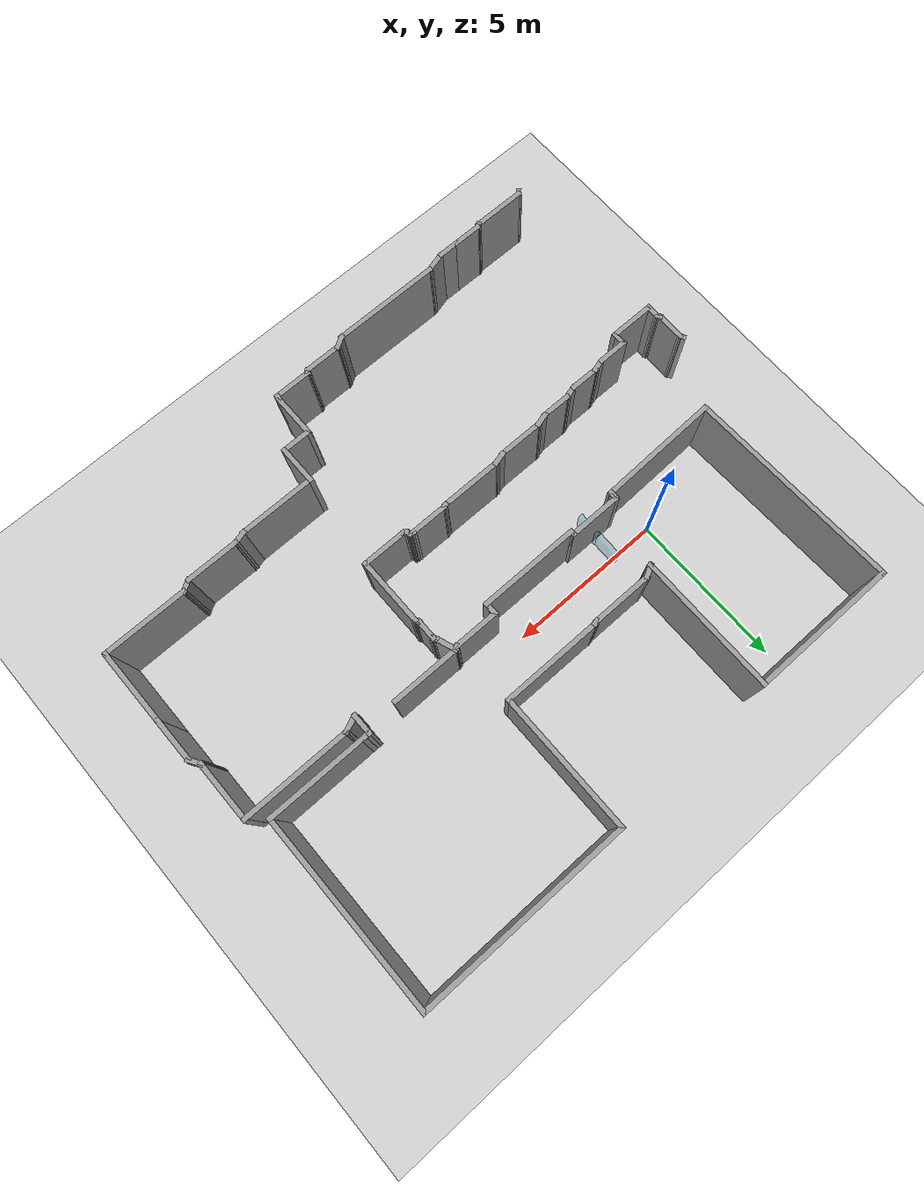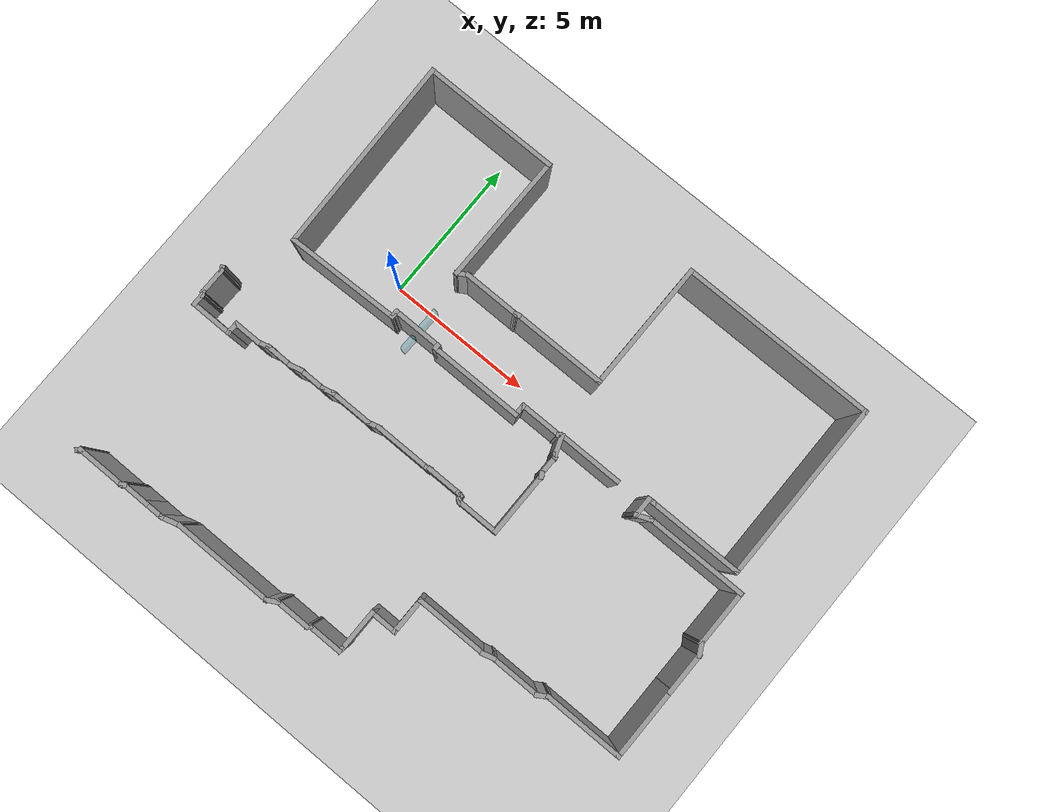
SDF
<sdf version="1.7">
 <world name="default">
  <model name="ground_plane">
   <static>1</static>
   <link name="link">
    <collision name="collision">
     <geometry><plane><normal>0 0 1</normal><size>100 100</size></plane></geometry>
     <surface><friction><ode><mu>100</mu><mu2>50</mu2></ode></friction></surface>
    </collision>
    <visual name="visual">
     <cast_shadows>0</cast_shadows>
     <geometry><plane><normal>0 0 1</normal><size>100 100</size></plane></geometry>
     <material>
      <script><uri>file://media/materials/scripts/gazebo.material</uri><name>Gazebo/Grey</name></script>
     </material>
    </visual>
   </link>
  </model>
  <model name="robovisor_env2">
   <pose>-12.9435 -0.483334 0 0 -0 3.14</pose>
   <link name="Wall_0">
    <collision name="Wall_0_Collision">
     <geometry><box><size>0.5 0.15 2.5</size></box></geometry>
     <pose>0 0 1.25 0 -0 0</pose>
    </collision>
    <visual name="Wall_0_Visual">
     <pose>0 0 1.25 0 -0 0</pose>
     <geometry><box><size>0.5 0.15 2.5</size></box></geometry>
     <material>
      <script><uri>file://media/materials/scripts/gazebo.material</uri><name>Gazebo/Grey</name></script>
      <ambient>1 1 1 1</ambient>
     </material>
     <meta><layer>0</layer></meta>
    </visual>
    <pose>-18.4525 0.304932 0 0 -0 1.5708</pose>
   </link>
   <link name="Wall_1">
    <collision name="Wall_1_Collision">
     <geometry><box><size>3.25 0.15 2.5</size></box></geometry>
     <pose>0 0 1.25 0 -0 0</pose>
    </collision>
    <visual name="Wall_1_Visual">
     <pose>0 0 1.25 0 -0 0</pose>
     <geometry><box><size>3.25 0.15 2.5</size></box></geometry>
     <material>
      <script><uri>file://media/materials/scripts/gazebo.material</uri><name>Gazebo/Grey</name></script>
      <ambient>1 1 1 1</ambient>
     </material>
     <meta><layer>0</layer></meta>
    </visual>
    <pose>-16.9025 0.479932 0 0 -0 0</pose>
   </link>
   <link name="Wall_119">
    <collision name="Wall_119_Collision">
     <geometry><box><size>0.25 0.15 2.5</size></box></geometry>
     <pose>0 0 1.25 0 -0 0</pose>
    </collision>
    <visual name="Wall_119_Visual">
     <pose>0 0 1.25 0 -0 0</pose>
     <geometry><box><size>0.25 0.15 2.5</size></box></geometry>
     <material>
      <script><uri>file://media/materials/scripts/gazebo.material</uri><name>Gazebo/Grey</name></script>
      <ambient>1 1 1 1</ambient>
     </material>
     <meta><layer>0</layer></meta>
    </visual>
    <pose>-8.90704 2.74506 0 0 -0 2.0944</pose>
   </link>
   <link name="Wall_120">
    <collision name="Wall_120_Collision">
     <geometry><box><size>1 0.15 2.5</size></box></geometry>
     <pose>0 0 1.25 0 -0 0</pose>
    </collision>
    <visual name="Wall_120_Visual">
     <pose>0 0 1.25 0 -0 0</pose>
     <geometry><box><size>1 0.15 2.5</size></box></geometry>
     <material>
      <script><uri>file://media/materials/scripts/gazebo.material</uri><name>Gazebo/Grey</name></script>
      <ambient>1 1 1 1</ambient>
     </material>
     <meta><layer>0</layer></meta>
    </visual>
    <pose>-8.93204 3.21337 0 0 -0 1.5708</pose>
   </link>
   <link name="Wall_121">
    <collision name="Wall_121_Collision">
     <geometry><box><size>0.25 0.15 2.5</size></box></geometry>
     <pose>0 0 1.25 0 -0 0</pose>
    </collision>
    <visual name="Wall_121_Visual">
     <pose>0 0 1.25 0 -0 0</pose>
     <geometry><box><size>0.25 0.15 2.5</size></box></geometry>
     <material>
      <script><uri>file://media/materials/scripts/gazebo.material</uri><name>Gazebo/Grey</name></script>
      <ambient>1 1 1 1</ambient>
     </material>
     <meta><layer>0</layer></meta>
    </visual>
    <pose>-8.95704 3.68167 0 0 -0 2.0944</pose>
   </link>
   <link name="Wall_122">
    <collision name="Wall_122_Collision">
     <geometry><box><size>0.5 0.15 2.5</size></box></geometry>
     <pose>0 0 1.25 0 -0 0</pose>
    </collision>
    <visual name="Wall_122_Visual">
     <pose>0 0 1.25 0 -0 0</pose>
     <geometry><box><size>0.5 0.15 2.5</size></box></geometry>
     <material>
      <script><uri>file://media/materials/scripts/gazebo.material</uri><name>Gazebo/Grey</name></script>
      <ambient>1 1 1 1</ambient>
     </material>
     <meta><layer>0</layer></meta>
    </visual>
    <pose>-8.98204 3.89997 0 0 -0 1.5708</pose>
   </link>
   <link name="Wall_123">
    <collision name="Wall_123_Collision">
     <geometry><box><size>1.5 0.15 2.5</size></box></geometry>
     <pose>0 0 1.25 0 -0 0</pose>
    </collision>
    <visual name="Wall_123_Visual">
     <pose>0 0 1.25 0 -0 0</pose>
     <geometry><box><size>1.5 0.15 2.5</size></box></geometry>
     <material>
      <script><uri>file://media/materials/scripts/gazebo.material</uri><name>Gazebo/Grey</name></script>
      <ambient>1 1 1 1</ambient>
     </material>
     <meta><layer>0</layer></meta>
    </visual>
    <pose>-9.65704 4.07497 0 0 -0 3.14159</pose>
   </link>
   <link name="Wall_124">
    <collision name="Wall_124_Collision">
     <geometry><box><size>0.5 0.15 2.5</size></box></geometry>
     <pose>0 0 1.25 0 -0 0</pose>
    </collision>
    <visual name="Wall_124_Visual">
     <pose>0 0 1.25 0 -0 0</pose>
     <geometry><box><size>0.5 0.15 2.5</size></box></geometry>
     <material>
      <script><uri>file://media/materials/scripts/gazebo.material</uri><name>Gazebo/Grey</name></script>
      <ambient>1 1 1 1</ambient>
     </material>
     <meta><layer>0</layer></meta>
    </visual>
    <pose>-10.332 3.89997 0 0 -0 -1.5708</pose>
   </link>
   <link name="Wall_126">
    <collision name="Wall_126_Collision">
     <geometry><box><size>1 0.15 2.5</size></box></geometry>
     <pose>0 0 1.25 0 -0 0</pose>
    </collision>
    <visual name="Wall_126_Visual">
     <pose>0 0 1.25 0 -0 0</pose>
     <geometry><box><size>1 0.15 2.5</size></box></geometry>
     <material>
      <script><uri>file://media/materials/scripts/gazebo.material</uri><name>Gazebo/Grey</name></script>
      <ambient>1 1 1 1</ambient>
     </material>
     <meta><layer>0</layer></meta>
    </visual>
    <pose>-10.757 3.72497 0 0 -0 3.14159</pose>
   </link>
   <link name="Wall_127">
    <collision name="Wall_127_Collision">
     <geometry><box><size>0.5 0.15 2.5</size></box></geometry>
     <pose>0 0 1.25 0 -0 0</pose>
    </collision>
    <visual name="Wall_127_Visual">
     <pose>0 0 1.25 0 -0 0</pose>
     <geometry><box><size>0.5 0.15 2.5</size></box></geometry>
     <material>
      <script><uri>file://media/materials/scripts/gazebo.material</uri><name>Gazebo/Grey</name></script>
      <ambient>1 1 1 1</ambient>
     </material>
     <meta><layer>0</layer></meta>
    </visual>
    <pose>-11.3511 3.67968 0 0 -0 -2.87979</pose>
   </link>
   <link name="Wall_128">
    <collision name="Wall_128_Collision">
     <geometry><box><size>1 0.15 2.5</size></box></geometry>
     <pose>0 0 1.25 0 -0 0</pose>
    </collision>
    <visual name="Wall_128_Visual">
     <pose>0 0 1.25 0 -0 0</pose>
     <geometry><box><size>1 0.15 2.5</size></box></geometry>
     <material>
      <script><uri>file://media/materials/scripts/gazebo.material</uri><name>Gazebo/Grey</name></script>
      <ambient>1 1 1 1</ambient>
     </material>
     <meta><layer>0</layer></meta>
    </visual>
    <pose>-11.9451 3.63438 0 0 -0 3.14159</pose>
   </link>
   <link name="Wall_129">
    <collision name="Wall_129_Collision">
     <geometry><box><size>0.5 0.15 2.5</size></box></geometry>
     <pose>0 0 1.25 0 -0 0</pose>
    </collision>
    <visual name="Wall_129_Visual">
     <pose>0 0 1.25 0 -0 0</pose>
     <geometry><box><size>0.5 0.15 2.5</size></box></geometry>
     <material>
      <script><uri>file://media/materials/scripts/gazebo.material</uri><name>Gazebo/Grey</name></script>
      <ambient>1 1 1 1</ambient>
     </material>
     <meta><layer>0</layer></meta>
    </visual>
    <pose>-12.5392 3.58909 0 0 -0 -2.87979</pose>
   </link>
   <link name="Wall_13">
    <collision name="Wall_13_Collision">
     <geometry><box><size>3.92846 0.15 2.5</size></box></geometry>
     <pose>0 0 1.25 0 -0 0</pose>
    </collision>
    <visual name="Wall_13_Visual">
     <pose>0 0 1.25 0 -0 0</pose>
     <geometry><box><size>3.92846 0.15 2.5</size></box></geometry>
     <material>
      <script><uri>file://media/materials/scripts/gazebo.material</uri><name>Gazebo/Grey</name></script>
      <ambient>1 1 1 1</ambient>
     </material>
     <meta><layer>0</layer></meta>
    </visual>
    <pose>-11.8641 0.634129 0 0 -0 -3.1129</pose>
   </link>
   <link name="Wall_130">
    <collision name="Wall_130_Collision">
     <geometry><box><size>1 0.15 2.5</size></box></geometry>
     <pose>0 0 1.25 0 -0 0</pose>
    </collision>
    <visual name="Wall_130_Visual">
     <pose>0 0 1.25 0 -0 0</pose>
     <geometry><box><size>1 0.15 2.5</size></box></geometry>
     <material>
      <script><uri>file://media/materials/scripts/gazebo.material</uri><name>Gazebo/Grey</name></script>
      <ambient>1 1 1 1</ambient>
     </material>
     <meta><layer>0</layer></meta>
    </visual>
    <pose>-13.1332 3.5438 0 0 -0 3.14159</pose>
   </link>
   <link name="Wall_131">
    <collision name="Wall_131_Collision">
     <geometry><box><size>0.5 0.15 2.5</size></box></geometry>
     <pose>0 0 1.25 0 -0 0</pose>
    </collision>
    <visual name="Wall_131_Visual">
     <pose>0 0 1.25 0 -0 0</pose>
     <geometry><box><size>0.5 0.15 2.5</size></box></geometry>
     <material>
      <script><uri>file://media/materials/scripts/gazebo.material</uri><name>Gazebo/Grey</name></script>
      <ambient>1 1 1 1</ambient>
     </material>
     <meta><layer>0</layer></meta>
    </visual>
    <pose>-13.7272 3.4985 0 0 -0 -2.87979</pose>
   </link>
   <link name="Wall_132">
    <collision name="Wall_132_Collision">
     <geometry><box><size>1.5 0.15 2.5</size></box></geometry>
     <pose>0 0 1.25 0 -0 0</pose>
    </collision>
    <visual name="Wall_132_Visual">
     <pose>0 0 1.25 0 -0 0</pose>
     <geometry><box><size>1.5 0.15 2.5</size></box></geometry>
     <material>
      <script><uri>file://media/materials/scripts/gazebo.material</uri><name>Gazebo/Grey</name></script>
      <ambient>1 1 1 1</ambient>
     </material>
     <meta><layer>0</layer></meta>
    </visual>
    <pose>-14.5713 3.45321 0 0 -0 3.14159</pose>
   </link>
   <link name="Wall_133">
    <collision name="Wall_133_Collision">
     <geometry><box><size>0.5 0.15 2.5</size></box></geometry>
     <pose>0 0 1.25 0 -0 0</pose>
    </collision>
    <visual name="Wall_133_Visual">
     <pose>0 0 1.25 0 -0 0</pose>
     <geometry><box><size>0.5 0.15 2.5</size></box></geometry>
     <material>
      <script><uri>file://media/materials/scripts/gazebo.material</uri><name>Gazebo/Grey</name></script>
      <ambient>1 1 1 1</ambient>
     </material>
     <meta><layer>0</layer></meta>
    </visual>
    <pose>-15.4153 3.40792 0 0 -0 -2.87979</pose>
   </link>
   <link name="Wall_134">
    <collision name="Wall_134_Collision">
     <geometry><box><size>2 0.15 2.5</size></box></geometry>
     <pose>0 0 1.25 0 -0 0</pose>
    </collision>
    <visual name="Wall_134_Visual">
     <pose>0 0 1.25 0 -0 0</pose>
     <geometry><box><size>2 0.15 2.5</size></box></geometry>
     <material>
      <script><uri>file://media/materials/scripts/gazebo.material</uri><name>Gazebo/Grey</name></script>
      <ambient>1 1 1 1</ambient>
     </material>
     <meta><layer>0</layer></meta>
    </visual>
    <pose>-16.5093 3.36262 0 0 -0 3.14159</pose>
   </link>
   <link name="Wall_135">
    <collision name="Wall_135_Collision">
     <geometry><box><size>0.25 0.15 2.5</size></box></geometry>
     <pose>0 0 1.25 0 -0 0</pose>
    </collision>
    <visual name="Wall_135_Visual">
     <pose>0 0 1.25 0 -0 0</pose>
     <geometry><box><size>0.25 0.15 2.5</size></box></geometry>
     <material>
      <script><uri>file://media/materials/scripts/gazebo.material</uri><name>Gazebo/Grey</name></script>
      <ambient>1 1 1 1</ambient>
     </material>
     <meta><layer>0</layer></meta>
    </visual>
    <pose>-17.4826 3.34968 0 0 -0 -2.87979</pose>
   </link>
   <link name="Wall_136">
    <collision name="Wall_136_Collision">
     <geometry><box><size>1.25 0.15 2.5</size></box></geometry>
     <pose>0 0 1.25 0 -0 0</pose>
    </collision>
    <visual name="Wall_136_Visual">
     <pose>0 0 1.25 0 -0 0</pose>
     <geometry><box><size>1.25 0.15 2.5</size></box></geometry>
     <material>
      <script><uri>file://media/materials/scripts/gazebo.material</uri><name>Gazebo/Grey</name></script>
      <ambient>1 1 1 1</ambient>
     </material>
     <meta><layer>0</layer></meta>
    </visual>
    <pose>-18.0809 3.33674 0 0 -0 3.14159</pose>
   </link>
   <link name="Wall_137">
    <collision name="Wall_137_Collision">
     <geometry><box><size>0.25 0.15 2.5</size></box></geometry>
     <pose>0 0 1.25 0 -0 0</pose>
    </collision>
    <visual name="Wall_137_Visual">
     <pose>0 0 1.25 0 -0 0</pose>
     <geometry><box><size>0.25 0.15 2.5</size></box></geometry>
     <material>
      <script><uri>file://media/materials/scripts/gazebo.material</uri><name>Gazebo/Grey</name></script>
      <ambient>1 1 1 1</ambient>
     </material>
     <meta><layer>0</layer></meta>
    </visual>
    <pose>-18.6792 3.34968 0 0 -0 2.87979</pose>
   </link>
   <link name="Wall_138">
    <collision name="Wall_138_Collision">
     <geometry><box><size>0.25 0.15 2.5</size></box></geometry>
     <pose>0 0 1.25 0 -0 0</pose>
    </collision>
    <visual name="Wall_138_Visual">
     <pose>0 0 1.25 0 -0 0</pose>
     <geometry><box><size>0.25 0.15 2.5</size></box></geometry>
     <material>
      <script><uri>file://media/materials/scripts/gazebo.material</uri><name>Gazebo/Grey</name></script>
      <ambient>1 1 1 1</ambient>
     </material>
     <meta><layer>0</layer></meta>
    </visual>
    <pose>-18.7405 3.41092 0 0 -0 1.8326</pose>
   </link>
   <link name="Wall_139">
    <collision name="Wall_139_Collision">
     <geometry><box><size>0.25 0.15 2.5</size></box></geometry>
     <pose>0 0 1.25 0 -0 0</pose>
    </collision>
    <visual name="Wall_139_Visual">
     <pose>0 0 1.25 0 -0 0</pose>
     <geometry><box><size>0.25 0.15 2.5</size></box></geometry>
     <material>
      <script><uri>file://media/materials/scripts/gazebo.material</uri><name>Gazebo/Grey</name></script>
      <ambient>1 1 1 1</ambient>
     </material>
     <meta><layer>0</layer></meta>
    </visual>
    <pose>-18.7967 3.48421 0 0 -0 2.61799</pose>
   </link>
   <link name="Wall_140">
    <collision name="Wall_140_Collision">
     <geometry><box><size>1.5 0.15 2.5</size></box></geometry>
     <pose>0 0 1.25 0 -0 0</pose>
    </collision>
    <visual name="Wall_140_Visual">
     <pose>0 0 1.25 0 -0 0</pose>
     <geometry><box><size>1.5 0.15 2.5</size></box></geometry>
     <material>
      <script><uri>file://media/materials/scripts/gazebo.material</uri><name>Gazebo/Grey</name></script>
      <ambient>1 1 1 1</ambient>
     </material>
     <meta><layer>0</layer></meta>
    </visual>
    <pose>-19.515 3.50922 0 0 -0 3.14159</pose>
   </link>
   <link name="Wall_141">
    <collision name="Wall_141_Collision">
     <geometry><box><size>2.25 0.15 2.5</size></box></geometry>
     <pose>0 0 1.25 0 -0 0</pose>
    </collision>
    <visual name="Wall_141_Visual">
     <pose>0 0 1.25 0 -0 0</pose>
     <geometry><box><size>2.25 0.15 2.5</size></box></geometry>
     <material>
      <script><uri>file://media/materials/scripts/gazebo.material</uri><name>Gazebo/Grey</name></script>
      <ambient>1 1 1 1</ambient>
     </material>
     <meta><layer>0</layer></meta>
    </visual>
    <pose>-20.19 2.45921 0 0 -0 -1.5708</pose>
   </link>
   <link name="Wall_144">
    <collision name="Wall_144_Collision">
     <geometry><box><size>0.25 0.15 2.5</size></box></geometry>
     <pose>0 0 1.25 0 -0 0</pose>
    </collision>
    <visual name="Wall_144_Visual">
     <pose>0 0 1.25 0 -0 0</pose>
     <geometry><box><size>0.25 0.15 2.5</size></box></geometry>
     <material>
      <script><uri>file://media/materials/scripts/gazebo.material</uri><name>Gazebo/Grey</name></script>
      <ambient>1 1 1 1</ambient>
     </material>
     <meta><layer>0</layer></meta>
    </visual>
    <pose>-20.165 1.36591 0 0 -0 -1.0472</pose>
   </link>
   <link name="Wall_145">
    <collision name="Wall_145_Collision">
     <geometry><box><size>0.75 0.15 2.5</size></box></geometry>
     <pose>0 0 1.25 0 -0 0</pose>
    </collision>
    <visual name="Wall_145_Visual">
     <pose>0 0 1.25 0 -0 0</pose>
     <geometry><box><size>0.75 0.15 2.5</size></box></geometry>
     <material>
      <script><uri>file://media/materials/scripts/gazebo.material</uri><name>Gazebo/Grey</name></script>
      <ambient>1 1 1 1</ambient>
     </material>
     <meta><layer>0</layer></meta>
    </visual>
    <pose>-20.14 1.02261 0 0 -0 -1.5708</pose>
   </link>
   <link name="Wall_146">
    <collision name="Wall_146_Collision">
     <geometry><box><size>0.25 0.15 2.5</size></box></geometry>
     <pose>0 0 1.25 0 -0 0</pose>
    </collision>
    <visual name="Wall_146_Visual">
     <pose>0 0 1.25 0 -0 0</pose>
     <geometry><box><size>0.25 0.15 2.5</size></box></geometry>
     <material>
      <script><uri>file://media/materials/scripts/gazebo.material</uri><name>Gazebo/Grey</name></script>
      <ambient>1 1 1 1</ambient>
     </material>
     <meta><layer>0</layer></meta>
    </visual>
    <pose>-20.115 0.679311 0 0 -0 -1.0472</pose>
   </link>
   <link name="Wall_147">
    <collision name="Wall_147_Collision">
     <geometry><box><size>0.741245 0.15 2.5</size></box></geometry>
     <pose>0 0 1.25 0 -0 0</pose>
    </collision>
    <visual name="Wall_147_Visual">
     <pose>0 0 1.25 0 -0 0</pose>
     <geometry><box><size>0.741245 0.15 2.5</size></box></geometry>
     <material>
      <script><uri>file://media/materials/scripts/gazebo.material</uri><name>Gazebo/Grey</name></script>
      <ambient>1 1 1 1</ambient>
     </material>
     <meta><layer>0</layer></meta>
    </visual>
    <pose>-19.9896 0.357971 0 0 -0 -1.22416</pose>
   </link>
   <link name="Wall_16">
    <collision name="Wall_16_Collision">
     <geometry><box><size>4.5 0.15 2.5</size></box></geometry>
     <pose>0 0 1.25 0 -0 0</pose>
    </collision>
    <visual name="Wall_16_Visual">
     <pose>0 0 1.25 0 -0 0</pose>
     <geometry><box><size>4.5 0.15 2.5</size></box></geometry>
     <material>
      <script><uri>file://media/materials/scripts/gazebo.material</uri><name>Gazebo/Grey</name></script>
      <ambient>1 1 1 1</ambient>
     </material>
     <meta><layer>0</layer></meta>
    </visual>
    <pose>-14.3741 -3.83787 0 0 -0 -1.5708</pose>
   </link>
   <link name="Wall_17">
    <collision name="Wall_17_Collision">
     <geometry><box><size>4.75 0.15 2.5</size></box></geometry>
     <pose>0 0 1.25 0 -0 0</pose>
    </collision>
    <visual name="Wall_17_Visual">
     <pose>0 0 1.25 0 -0 0</pose>
     <geometry><box><size>4.75 0.15 2.5</size></box></geometry>
     <material>
      <script><uri>file://media/materials/scripts/gazebo.material</uri><name>Gazebo/Grey</name></script>
      <ambient>1 1 1 1</ambient>
     </material>
     <meta><layer>0</layer></meta>
    </visual>
    <pose>-12.0741 -6.01287 0 0 -0 0</pose>
   </link>
   <link name="Wall_18">
    <collision name="Wall_18_Collision">
     <geometry><box><size>6.85422 0.15 2.5</size></box></geometry>
     <pose>0 0 1.25 0 -0 0</pose>
    </collision>
    <visual name="Wall_18_Visual">
     <pose>0 0 1.25 0 -0 0</pose>
     <geometry><box><size>6.85422 0.15 2.5</size></box></geometry>
     <material>
      <script><uri>file://media/materials/scripts/gazebo.material</uri><name>Gazebo/Grey</name></script>
      <ambient>1 1 1 1</ambient>
     </material>
     <meta><layer>0</layer></meta>
    </visual>
    <pose>-9.87486 -2.66227 0 0 -0 1.60086</pose>
   </link>
   <link name="Wall_2">
    <collision name="Wall_2_Collision">
     <geometry><box><size>0.25 0.15 2.5</size></box></geometry>
     <pose>0 0 1.25 0 -0 0</pose>
    </collision>
    <visual name="Wall_2_Visual">
     <pose>0 0 1.25 0 -0 0</pose>
     <geometry><box><size>0.25 0.15 2.5</size></box></geometry>
     <material>
      <script><uri>file://media/materials/scripts/gazebo.material</uri><name>Gazebo/Grey</name></script>
      <ambient>1 1 1 1</ambient>
     </material>
     <meta><layer>0</layer></meta>
    </visual>
    <pose>-15.3525 0.429932 0 0 -0 -1.5708</pose>
   </link>
   <link name="Wall_20">
    <collision name="Wall_20_Collision">
     <geometry><box><size>0.5 0.15 2.5</size></box></geometry>
     <pose>0 0 1.25 0 -0 0</pose>
    </collision>
    <visual name="Wall_20_Visual">
     <pose>0 0 1.25 0 -0 0</pose>
     <geometry><box><size>0.5 0.15 2.5</size></box></geometry>
     <material>
      <script><uri>file://media/materials/scripts/gazebo.material</uri><name>Gazebo/Grey</name></script>
      <ambient>1 1 1 1</ambient>
     </material>
     <meta><layer>0</layer></meta>
    </visual>
    <pose>-14.5256 -1.75037 0 0 -0 -2.61799</pose>
   </link>
   <link name="Wall_21">
    <collision name="Wall_21_Collision">
     <geometry><box><size>2 0.15 2.5</size></box></geometry>
     <pose>0 0 1.25 0 -0 0</pose>
    </collision>
    <visual name="Wall_21_Visual">
     <pose>0 0 1.25 0 -0 0</pose>
     <geometry><box><size>2 0.15 2.5</size></box></geometry>
     <material>
      <script><uri>file://media/materials/scripts/gazebo.material</uri><name>Gazebo/Grey</name></script>
      <ambient>1 1 1 1</ambient>
     </material>
     <meta><layer>0</layer></meta>
    </visual>
    <pose>-15.6022 -1.83787 0 0 -0 3.14159</pose>
   </link>
   <link name="Wall_22">
    <collision name="Wall_22_Collision">
     <geometry><box><size>0.25 0.15 2.5</size></box></geometry>
     <pose>0 0 1.25 0 -0 0</pose>
    </collision>
    <visual name="Wall_22_Visual">
     <pose>0 0 1.25 0 -0 0</pose>
     <geometry><box><size>0.25 0.15 2.5</size></box></geometry>
     <material>
      <script><uri>file://media/materials/scripts/gazebo.material</uri><name>Gazebo/Grey</name></script>
      <ambient>1 1 1 1</ambient>
     </material>
     <meta><layer>0</layer></meta>
    </visual>
    <pose>-16.5755 -1.85081 0 0 -0 -2.87979</pose>
   </link>
   <link name="Wall_23">
    <collision name="Wall_23_Collision">
     <geometry><box><size>3.25 0.15 2.5</size></box></geometry>
     <pose>0 0 1.25 0 -0 0</pose>
    </collision>
    <visual name="Wall_23_Visual">
     <pose>0 0 1.25 0 -0 0</pose>
     <geometry><box><size>3.25 0.15 2.5</size></box></geometry>
     <material>
      <script><uri>file://media/materials/scripts/gazebo.material</uri><name>Gazebo/Grey</name></script>
      <ambient>1 1 1 1</ambient>
     </material>
     <meta><layer>0</layer></meta>
    </visual>
    <pose>-18.1738 -1.86375 0 0 -0 3.14159</pose>
   </link>
   <link name="Wall_24">
    <collision name="Wall_24_Collision">
     <geometry><box><size>4.5 0.15 2.5</size></box></geometry>
     <pose>0 0 1.25 0 -0 0</pose>
    </collision>
    <visual name="Wall_24_Visual">
     <pose>0 0 1.25 0 -0 0</pose>
     <geometry><box><size>4.5 0.15 2.5</size></box></geometry>
     <material>
      <script><uri>file://media/materials/scripts/gazebo.material</uri><name>Gazebo/Grey</name></script>
      <ambient>1 1 1 1</ambient>
     </material>
     <meta><layer>0</layer></meta>
    </visual>
    <pose>-19.7238 -4.03875 0 0 -0 -1.5708</pose>
   </link>
   <link name="Wall_25">
    <collision name="Wall_25_Collision">
     <geometry><box><size>6.75 0.15 2.5</size></box></geometry>
     <pose>0 0 1.25 0 -0 0</pose>
    </collision>
    <visual name="Wall_25_Visual">
     <pose>0 0 1.25 0 -0 0</pose>
     <geometry><box><size>6.75 0.15 2.5</size></box></geometry>
     <material>
      <script><uri>file://media/materials/scripts/gazebo.material</uri><name>Gazebo/Grey</name></script>
      <ambient>1 1 1 1</ambient>
     </material>
     <meta><layer>0</layer></meta>
    </visual>
    <pose>-23.0238 -6.21375 0 0 -0 3.14159</pose>
   </link>
   <link name="Wall_26">
    <collision name="Wall_26_Collision">
     <geometry><box><size>6.25 0.15 2.5</size></box></geometry>
     <pose>0 0 1.25 0 -0 0</pose>
    </collision>
    <visual name="Wall_26_Visual">
     <pose>0 0 1.25 0 -0 0</pose>
     <geometry><box><size>6.25 0.15 2.5</size></box></geometry>
     <material>
      <script><uri>file://media/materials/scripts/gazebo.material</uri><name>Gazebo/Grey</name></script>
      <ambient>1 1 1 1</ambient>
     </material>
     <meta><layer>0</layer></meta>
    </visual>
    <pose>-26.3238 -3.16375 0 0 -0 1.5708</pose>
   </link>
   <link name="Wall_3">
    <collision name="Wall_3_Collision">
     <geometry><box><size>1.75 0.15 2.5</size></box></geometry>
     <pose>0 0 1.25 0 -0 0</pose>
    </collision>
    <visual name="Wall_3_Visual">
     <pose>0 0 1.25 0 -0 0</pose>
     <geometry><box><size>1.75 0.15 2.5</size></box></geometry>
     <material>
      <script><uri>file://media/materials/scripts/gazebo.material</uri><name>Gazebo/Grey</name></script>
      <ambient>1 1 1 1</ambient>
     </material>
     <meta><layer>0</layer></meta>
    </visual>
    <pose>-14.5525 0.379932 0 0 -0 0</pose>
   </link>
   <link name="Wall_34">
    <collision name="Wall_34_Collision">
     <geometry><box><size>0.15 0.15 2.5</size></box></geometry>
     <pose>0 0 1.25 0 -0 0</pose>
    </collision>
    <visual name="Wall_34_Visual">
     <pose>0 0 1.25 0 -0 0</pose>
     <geometry><box><size>0.15 0.15 2.5</size></box></geometry>
     <material>
      <script><uri>file://media/materials/scripts/gazebo.material</uri><name>Gazebo/Grey</name></script>
      <ambient>1 1 1 1</ambient>
     </material>
     <meta><layer>0</layer></meta>
    </visual>
    <pose>-23.2238 -0.113748 0 0 -0 0</pose>
   </link>
   <link name="Wall_38">
    <collision name="Wall_38_Collision">
     <geometry><box><size>0.5 0.15 2.5</size></box></geometry>
     <pose>0 0 1.25 0 -0 0</pose>
    </collision>
    <visual name="Wall_38_Visual">
     <pose>0 0 1.25 0 -0 0</pose>
     <geometry><box><size>0.5 0.15 2.5</size></box></geometry>
     <material>
      <script><uri>file://media/materials/scripts/gazebo.material</uri><name>Gazebo/Grey</name></script>
      <ambient>1 1 1 1</ambient>
     </material>
     <meta><layer>0</layer></meta>
    </visual>
    <pose>-18.4525 0.304932 0 0 -0 -1.5708</pose>
   </link>
   <link name="Wall_39">
    <collision name="Wall_39_Collision">
     <geometry><box><size>1.5 0.15 2.5</size></box></geometry>
     <pose>0 0 1.25 0 -0 0</pose>
    </collision>
    <visual name="Wall_39_Visual">
     <pose>0 0 1.25 0 -0 0</pose>
     <geometry><box><size>1.5 0.15 2.5</size></box></geometry>
     <material>
      <script><uri>file://media/materials/scripts/gazebo.material</uri><name>Gazebo/Grey</name></script>
      <ambient>1 1 1 1</ambient>
     </material>
     <meta><layer>0</layer></meta>
    </visual>
    <pose>-19.1275 0.129932 0 0 -0 3.14159</pose>
   </link>
   <link name="Wall_4">
    <collision name="Wall_4_Collision">
     <geometry><box><size>0.25 0.15 2.5</size></box></geometry>
     <pose>0 0 1.25 0 -0 0</pose>
    </collision>
    <visual name="Wall_4_Visual">
     <pose>0 0 1.25 0 -0 0</pose>
     <geometry><box><size>0.25 0.15 2.5</size></box></geometry>
     <material>
      <script><uri>file://media/materials/scripts/gazebo.material</uri><name>Gazebo/Grey</name></script>
      <ambient>1 1 1 1</ambient>
     </material>
     <meta><layer>0</layer></meta>
    </visual>
    <pose>-13.7525 0.429932 0 0 -0 1.5708</pose>
   </link>
   <link name="Wall_40">
    <collision name="Wall_40_Collision">
     <geometry><box><size>0.25 0.15 2.5</size></box></geometry>
     <pose>0 0 1.25 0 -0 0</pose>
    </collision>
    <visual name="Wall_40_Visual">
     <pose>0 0 1.25 0 -0 0</pose>
     <geometry><box><size>0.25 0.15 2.5</size></box></geometry>
     <material>
      <script><uri>file://media/materials/scripts/gazebo.material</uri><name>Gazebo/Grey</name></script>
      <ambient>1 1 1 1</ambient>
     </material>
     <meta><layer>0</layer></meta>
    </visual>
    <pose>-19.8458 0.104932 0 0 -0 -2.61799</pose>
   </link>
   <link name="Wall_41">
    <collision name="Wall_41_Collision">
     <geometry><box><size>2.25 0.15 2.5</size></box></geometry>
     <pose>0 0 1.25 0 -0 0</pose>
    </collision>
    <visual name="Wall_41_Visual">
     <pose>0 0 1.25 0 -0 0</pose>
     <geometry><box><size>2.25 0.15 2.5</size></box></geometry>
     <material>
      <script><uri>file://media/materials/scripts/gazebo.material</uri><name>Gazebo/Grey</name></script>
      <ambient>1 1 1 1</ambient>
     </material>
     <meta><layer>0</layer></meta>
    </visual>
    <pose>-20.9391 0.079932 0 0 -0 3.14159</pose>
   </link>
   <link name="Wall_43">
    <collision name="Wall_43_Collision">
     <geometry><box><size>0.75 0.15 2.5</size></box></geometry>
     <pose>0 0 1.25 0 -0 0</pose>
    </collision>
    <visual name="Wall_43_Visual">
     <pose>0 0 1.25 0 -0 0</pose>
     <geometry><box><size>0.75 0.15 2.5</size></box></geometry>
     <material>
      <script><uri>file://media/materials/scripts/gazebo.material</uri><name>Gazebo/Grey</name></script>
      <ambient>1 1 1 1</ambient>
     </material>
     <meta><layer>0</layer></meta>
    </visual>
    <pose>-23.0334 0.189807 0 0 -0 -1.5708</pose>
   </link>
   <link name="Wall_44">
    <collision name="Wall_44_Collision">
     <geometry><box><size>3.44044 0.15 2.5</size></box></geometry>
     <pose>0 0 1.25 0 -0 0</pose>
    </collision>
    <visual name="Wall_44_Visual">
     <pose>0 0 1.25 0 -0 0</pose>
     <geometry><box><size>3.44044 0.15 2.5</size></box></geometry>
     <material>
      <script><uri>file://media/materials/scripts/gazebo.material</uri><name>Gazebo/Grey</name></script>
      <ambient>1 1 1 1</ambient>
     </material>
     <meta><layer>0</layer></meta>
    </visual>
    <pose>-24.6786 -0.11197 0 0 -0 -3.14051</pose>
   </link>
   <link name="Wall_46">
    <collision name="Wall_46_Collision">
     <geometry><box><size>0.619361 0.15 2.5</size></box></geometry>
     <pose>0 0 1.25 0 -0 0</pose>
    </collision>
    <visual name="Wall_46_Visual">
     <pose>0 0 1.25 0 -0 0</pose>
     <geometry><box><size>0.619361 0.15 2.5</size></box></geometry>
     <material>
      <script><uri>file://media/materials/scripts/gazebo.material</uri><name>Gazebo/Grey</name></script>
      <ambient>1 1 1 1</ambient>
     </material>
     <meta><layer>0</layer></meta>
    </visual>
    <pose>-23.2495 0.398505 0 0 -0 -2.74199</pose>
   </link>
   <link name="Wall_47">
    <collision name="Wall_47_Collision">
     <geometry><box><size>3.5 0.15 2.5</size></box></geometry>
     <pose>0 0 1.25 0 -0 0</pose>
    </collision>
    <visual name="Wall_47_Visual">
     <pose>0 0 1.25 0 -0 0</pose>
     <geometry><box><size>3.5 0.15 2.5</size></box></geometry>
     <material>
      <script><uri>file://media/materials/scripts/gazebo.material</uri><name>Gazebo/Grey</name></script>
      <ambient>1 1 1 1</ambient>
     </material>
     <meta><layer>0</layer></meta>
    </visual>
    <pose>-25.1331 0.307203 0 0 -0 3.14159</pose>
   </link>
   <link name="Wall_5">
    <collision name="Wall_5_Collision">
     <geometry><box><size>0.25 0.15 2.5</size></box></geometry>
     <pose>0 0 1.25 0 -0 0</pose>
    </collision>
    <visual name="Wall_5_Visual">
     <pose>0 0 1.25 0 -0 0</pose>
     <geometry><box><size>0.25 0.15 2.5</size></box></geometry>
     <material>
      <script><uri>file://media/materials/scripts/gazebo.material</uri><name>Gazebo/Grey</name></script>
      <ambient>1 1 1 1</ambient>
     </material>
     <meta><layer>0</layer></meta>
    </visual>
    <pose>-13.7525 0.529932 0 0 -0 1.5708</pose>
   </link>
   <link name="Wall_51">
    <collision name="Wall_51_Collision">
     <geometry><box><size>2 0.15 2.5</size></box></geometry>
     <pose>0 0 1.25 0 -0 0</pose>
    </collision>
    <visual name="Wall_51_Visual">
     <pose>0 0 1.25 0 -0 0</pose>
     <geometry><box><size>2 0.15 2.5</size></box></geometry>
     <material>
      <script><uri>file://media/materials/scripts/gazebo.material</uri><name>Gazebo/Grey</name></script>
      <ambient>1 1 1 1</ambient>
     </material>
     <meta><layer>0</layer></meta>
    </visual>
    <pose>-26.8081 1.2322 0 0 -0 1.5708</pose>
   </link>
   <link name="Wall_52">
    <collision name="Wall_52_Collision">
     <geometry><box><size>0.5 0.15 2.5</size></box></geometry>
     <pose>0 0 1.25 0 -0 0</pose>
    </collision>
    <visual name="Wall_52_Visual">
     <pose>0 0 1.25 0 -0 0</pose>
     <geometry><box><size>0.5 0.15 2.5</size></box></geometry>
     <material>
      <script><uri>file://media/materials/scripts/gazebo.material</uri><name>Gazebo/Grey</name></script>
      <ambient>1 1 1 1</ambient>
     </material>
     <meta><layer>0</layer></meta>
    </visual>
    <pose>-26.8956 2.30876 0 0 -0 2.0944</pose>
   </link>
   <link name="Wall_53">
    <collision name="Wall_53_Collision">
     <geometry><box><size>1.5 0.15 2.5</size></box></geometry>
     <pose>0 0 1.25 0 -0 0</pose>
    </collision>
    <visual name="Wall_53_Visual">
     <pose>0 0 1.25 0 -0 0</pose>
     <geometry><box><size>1.5 0.15 2.5</size></box></geometry>
     <material>
      <script><uri>file://media/materials/scripts/gazebo.material</uri><name>Gazebo/Grey</name></script>
      <ambient>1 1 1 1</ambient>
     </material>
     <meta><layer>0</layer></meta>
    </visual>
    <pose>-26.9831 3.13531 0 0 -0 1.5708</pose>
   </link>
   <link name="Wall_54">
    <collision name="Wall_54_Collision">
     <geometry><box><size>2.5 0.15 2.5</size></box></geometry>
     <pose>0 0 1.25 0 -0 0</pose>
    </collision>
    <visual name="Wall_54_Visual">
     <pose>0 0 1.25 0 -0 0</pose>
     <geometry><box><size>2.5 0.15 2.5</size></box></geometry>
     <material>
      <script><uri>file://media/materials/scripts/gazebo.material</uri><name>Gazebo/Grey</name></script>
      <ambient>1 1 1 1</ambient>
     </material>
     <meta><layer>0</layer></meta>
    </visual>
    <pose>-26.9831 4.98531 0 0 -0 1.5708</pose>
   </link>
   <link name="Wall_55">
    <collision name="Wall_55_Collision">
     <geometry><box><size>2.75 0.15 2.5</size></box></geometry>
     <pose>0 0 1.25 0 -0 0</pose>
    </collision>
    <visual name="Wall_55_Visual">
     <pose>0 0 1.25 0 -0 0</pose>
     <geometry><box><size>2.75 0.15 2.5</size></box></geometry>
     <material>
      <script><uri>file://media/materials/scripts/gazebo.material</uri><name>Gazebo/Grey</name></script>
      <ambient>1 1 1 1</ambient>
     </material>
     <meta><layer>0</layer></meta>
    </visual>
    <pose>-25.6831 6.16031 0 0 -0 0</pose>
   </link>
   <link name="Wall_56">
    <collision name="Wall_56_Collision">
     <geometry><box><size>0.5 0.15 2.5</size></box></geometry>
     <pose>0 0 1.25 0 -0 0</pose>
    </collision>
    <visual name="Wall_56_Visual">
     <pose>0 0 1.25 0 -0 0</pose>
     <geometry><box><size>0.5 0.15 2.5</size></box></geometry>
     <material>
      <script><uri>file://media/materials/scripts/gazebo.material</uri><name>Gazebo/Grey</name></script>
      <ambient>1 1 1 1</ambient>
     </material>
     <meta><layer>0</layer></meta>
    </visual>
    <pose>-24.2316 6.24781 0 0 -0 0.523599</pose>
   </link>
   <link name="Wall_57">
    <collision name="Wall_57_Collision">
     <geometry><box><size>1.75 0.15 2.5</size></box></geometry>
     <pose>0 0 1.25 0 -0 0</pose>
    </collision>
    <visual name="Wall_57_Visual">
     <pose>0 0 1.25 0 -0 0</pose>
     <geometry><box><size>1.75 0.15 2.5</size></box></geometry>
     <material>
      <script><uri>file://media/materials/scripts/gazebo.material</uri><name>Gazebo/Grey</name></script>
      <ambient>1 1 1 1</ambient>
     </material>
     <meta><layer>0</layer></meta>
    </visual>
    <pose>-23.28 6.33531 0 0 -0 0</pose>
   </link>
   <link name="Wall_58">
    <collision name="Wall_58_Collision">
     <geometry><box><size>0.5 0.15 2.5</size></box></geometry>
     <pose>0 0 1.25 0 -0 0</pose>
    </collision>
    <visual name="Wall_58_Visual">
     <pose>0 0 1.25 0 -0 0</pose>
     <geometry><box><size>0.5 0.15 2.5</size></box></geometry>
     <material>
      <script><uri>file://media/materials/scripts/gazebo.material</uri><name>Gazebo/Grey</name></script>
      <ambient>1 1 1 1</ambient>
     </material>
     <meta><layer>0</layer></meta>
    </visual>
    <pose>-22.311 6.38061 0 0 -0 0.261799</pose>
   </link>
   <link name="Wall_59">
    <collision name="Wall_59_Collision">
     <geometry><box><size>2.5 0.15 2.5</size></box></geometry>
     <pose>0 0 1.25 0 -0 0</pose>
    </collision>
    <visual name="Wall_59_Visual">
     <pose>0 0 1.25 0 -0 0</pose>
     <geometry><box><size>2.5 0.15 2.5</size></box></geometry>
     <material>
      <script><uri>file://media/materials/scripts/gazebo.material</uri><name>Gazebo/Grey</name></script>
      <ambient>1 1 1 1</ambient>
     </material>
     <meta><layer>0</layer></meta>
    </visual>
    <pose>-20.967 6.4259 0 0 -0 0</pose>
   </link>
   <link name="Wall_61">
    <collision name="Wall_61_Collision">
     <geometry><box><size>1.31718 0.15 2.5</size></box></geometry>
     <pose>0 0 1.25 0 -0 0</pose>
    </collision>
    <visual name="Wall_61_Visual">
     <pose>0 0 1.25 0 -0 0</pose>
     <geometry><box><size>1.31718 0.15 2.5</size></box></geometry>
     <material>
      <script><uri>file://media/materials/scripts/gazebo.material</uri><name>Gazebo/Grey</name></script>
      <ambient>1 1 1 1</ambient>
     </material>
     <meta><layer>0</layer></meta>
    </visual>
    <pose>-19.792 7.00915 0 0 -0 1.5708</pose>
   </link>
   <link name="Wall_64">
    <collision name="Wall_64_Collision">
     <geometry><box><size>1 0.15 2.5</size></box></geometry>
     <pose>0 0 1.25 0 -0 0</pose>
    </collision>
    <visual name="Wall_64_Visual">
     <pose>0 0 1.25 0 -0 0</pose>
     <geometry><box><size>1 0.15 2.5</size></box></geometry>
     <material>
      <script><uri>file://media/materials/scripts/gazebo.material</uri><name>Gazebo/Grey</name></script>
      <ambient>1 1 1 1</ambient>
     </material>
     <meta><layer>0</layer></meta>
    </visual>
    <pose>-19.367 7.5924 0 0 -0 0</pose>
   </link>
   <link name="Wall_65">
    <collision name="Wall_65_Collision">
     <geometry><box><size>1.5 0.15 2.5</size></box></geometry>
     <pose>0 0 1.25 0 -0 0</pose>
    </collision>
    <visual name="Wall_65_Visual">
     <pose>0 0 1.25 0 -0 0</pose>
     <geometry><box><size>1.5 0.15 2.5</size></box></geometry>
     <material>
      <script><uri>file://media/materials/scripts/gazebo.material</uri><name>Gazebo/Grey</name></script>
      <ambient>1 1 1 1</ambient>
     </material>
     <meta><layer>0</layer></meta>
    </visual>
    <pose>-18.942 8.2674 0 0 -0 1.5708</pose>
   </link>
   <link name="Wall_66">
    <collision name="Wall_66_Collision">
     <geometry><box><size>0.25 0.15 2.5</size></box></geometry>
     <pose>0 0 1.25 0 -0 0</pose>
    </collision>
    <visual name="Wall_66_Visual">
     <pose>0 0 1.25 0 -0 0</pose>
     <geometry><box><size>0.25 0.15 2.5</size></box></geometry>
     <material>
      <script><uri>file://media/materials/scripts/gazebo.material</uri><name>Gazebo/Grey</name></script>
      <ambient>1 1 1 1</ambient>
     </material>
     <meta><layer>0</layer></meta>
    </visual>
    <pose>-18.929 8.9907 0 0 -0 1.309</pose>
   </link>
   <link name="Wall_67">
    <collision name="Wall_67_Collision">
     <geometry><box><size>1.25 0.15 2.5</size></box></geometry>
     <pose>0 0 1.25 0 -0 0</pose>
    </collision>
    <visual name="Wall_67_Visual">
     <pose>0 0 1.25 0 -0 0</pose>
     <geometry><box><size>1.25 0.15 2.5</size></box></geometry>
     <material>
      <script><uri>file://media/materials/scripts/gazebo.material</uri><name>Gazebo/Grey</name></script>
      <ambient>1 1 1 1</ambient>
     </material>
     <meta><layer>0</layer></meta>
    </visual>
    <pose>-18.3661 9.03899 0 0 -0 0</pose>
   </link>
   <link name="Wall_68">
    <collision name="Wall_68_Collision">
     <geometry><box><size>0.25 0.15 2.5</size></box></geometry>
     <pose>0 0 1.25 0 -0 0</pose>
    </collision>
    <visual name="Wall_68_Visual">
     <pose>0 0 1.25 0 -0 0</pose>
     <geometry><box><size>0.25 0.15 2.5</size></box></geometry>
     <material>
      <script><uri>file://media/materials/scripts/gazebo.material</uri><name>Gazebo/Grey</name></script>
      <ambient>1 1 1 1</ambient>
     </material>
     <meta><layer>0</layer></meta>
    </visual>
    <pose>-17.7807 9.07435 0 0 -0 0.785398</pose>
   </link>
   <link name="Wall_69">
    <collision name="Wall_69_Collision">
     <geometry><box><size>1.25 0.15 2.5</size></box></geometry>
     <pose>0 0 1.25 0 -0 0</pose>
    </collision>
    <visual name="Wall_69_Visual">
     <pose>0 0 1.25 0 -0 0</pose>
     <geometry><box><size>1.25 0.15 2.5</size></box></geometry>
     <material>
      <script><uri>file://media/materials/scripts/gazebo.material</uri><name>Gazebo/Grey</name></script>
      <ambient>1 1 1 1</ambient>
     </material>
     <meta><layer>0</layer></meta>
    </visual>
    <pose>-17.1954 9.1097 0 0 -0 0</pose>
   </link>
   <link name="Wall_70">
    <collision name="Wall_70_Collision">
     <geometry><box><size>0.5 0.15 2.5</size></box></geometry>
     <pose>0 0 1.25 0 -0 0</pose>
    </collision>
    <visual name="Wall_70_Visual">
     <pose>0 0 1.25 0 -0 0</pose>
     <geometry><box><size>0.5 0.15 2.5</size></box></geometry>
     <material>
      <script><uri>file://media/materials/scripts/gazebo.material</uri><name>Gazebo/Grey</name></script>
      <ambient>1 1 1 1</ambient>
     </material>
     <meta><layer>0</layer></meta>
    </visual>
    <pose>-16.4938 9.1972 0 0 -0 0.523599</pose>
   </link>
   <link name="Wall_71">
    <collision name="Wall_71_Collision">
     <geometry><box><size>3.5 0.15 2.5</size></box></geometry>
     <pose>0 0 1.25 0 -0 0</pose>
    </collision>
    <visual name="Wall_71_Visual">
     <pose>0 0 1.25 0 -0 0</pose>
     <geometry><box><size>3.5 0.15 2.5</size></box></geometry>
     <material>
      <script><uri>file://media/materials/scripts/gazebo.material</uri><name>Gazebo/Grey</name></script>
      <ambient>1 1 1 1</ambient>
     </material>
     <meta><layer>0</layer></meta>
    </visual>
    <pose>-14.6673 9.2847 0 0 -0 0</pose>
   </link>
   <link name="Wall_72">
    <collision name="Wall_72_Collision">
     <geometry><box><size>0.75 0.15 2.5</size></box></geometry>
     <pose>0 0 1.25 0 -0 0</pose>
    </collision>
    <visual name="Wall_72_Visual">
     <pose>0 0 1.25 0 -0 0</pose>
     <geometry><box><size>0.75 0.15 2.5</size></box></geometry>
     <material>
      <script><uri>file://media/materials/scripts/gazebo.material</uri><name>Gazebo/Grey</name></script>
      <ambient>1 1 1 1</ambient>
     </material>
     <meta><layer>0</layer></meta>
    </visual>
    <pose>-12.7025 9.36235 0 0 -0 0.261799</pose>
   </link>
   <link name="Wall_73">
    <collision name="Wall_73_Collision">
     <geometry><box><size>0.75 0.15 2.5</size></box></geometry>
     <pose>0 0 1.25 0 -0 0</pose>
    </collision>
    <visual name="Wall_73_Visual">
     <pose>0 0 1.25 0 -0 0</pose>
     <geometry><box><size>0.75 0.15 2.5</size></box></geometry>
     <material>
      <script><uri>file://media/materials/scripts/gazebo.material</uri><name>Gazebo/Grey</name></script>
      <ambient>1 1 1 1</ambient>
     </material>
     <meta><layer>0</layer></meta>
    </visual>
    <pose>-12.1127 9.43999 0 0 -0 0</pose>
   </link>
   <link name="Wall_75">
    <collision name="Wall_75_Collision">
     <geometry><box><size>1 0.15 2.5</size></box></geometry>
     <pose>0 0 1.25 0 -0 0</pose>
    </collision>
    <visual name="Wall_75_Visual">
     <pose>0 0 1.25 0 -0 0</pose>
     <geometry><box><size>1 0.15 2.5</size></box></geometry>
     <material>
      <script><uri>file://media/materials/scripts/gazebo.material</uri><name>Gazebo/Grey</name></script>
      <ambient>1 1 1 1</ambient>
     </material>
     <meta><layer>0</layer></meta>
    </visual>
    <pose>-11.3877 9.43999 0 0 -0 0</pose>
   </link>
   <link name="Wall_76">
    <collision name="Wall_76_Collision">
     <geometry><box><size>0.25 0.15 2.5</size></box></geometry>
     <pose>0 0 1.25 0 -0 0</pose>
    </collision>
    <visual name="Wall_76_Visual">
     <pose>0 0 1.25 0 -0 0</pose>
     <geometry><box><size>0.25 0.15 2.5</size></box></geometry>
     <material>
      <script><uri>file://media/materials/scripts/gazebo.material</uri><name>Gazebo/Grey</name></script>
      <ambient>1 1 1 1</ambient>
     </material>
     <meta><layer>0</layer></meta>
    </visual>
    <pose>-10.9194 9.46499 0 0 -0 0.523599</pose>
   </link>
   <link name="Wall_77">
    <collision name="Wall_77_Collision">
     <geometry><box><size>1.75 0.15 2.5</size></box></geometry>
     <pose>0 0 1.25 0 -0 0</pose>
    </collision>
    <visual name="Wall_77_Visual">
     <pose>0 0 1.25 0 -0 0</pose>
     <geometry><box><size>1.75 0.15 2.5</size></box></geometry>
     <material>
      <script><uri>file://media/materials/scripts/gazebo.material</uri><name>Gazebo/Grey</name></script>
      <ambient>1 1 1 1</ambient>
     </material>
     <meta><layer>0</layer></meta>
    </visual>
    <pose>-10.0761 9.48999 0 0 -0 0</pose>
   </link>
   <link name="Wall_78">
    <collision name="Wall_78_Collision">
     <geometry><box><size>0.25 0.15 2.5</size></box></geometry>
     <pose>0 0 1.25 0 -0 0</pose>
    </collision>
    <visual name="Wall_78_Visual">
     <pose>0 0 1.25 0 -0 0</pose>
     <geometry><box><size>0.25 0.15 2.5</size></box></geometry>
     <material>
      <script><uri>file://media/materials/scripts/gazebo.material</uri><name>Gazebo/Grey</name></script>
      <ambient>1 1 1 1</ambient>
     </material>
     <meta><layer>0</layer></meta>
    </visual>
    <pose>-9.24074 9.52535 0 0 -0 0.785398</pose>
   </link>
   <static>1</static>
  </model>
  <model name="window">
   <link name="link_2">
    <visual name="visual">
     <pose>0 0 0.9 0 -0 0</pose>
     <geometry><box><size>0.8 0.15 0.8</size></box></geometry>
     <material>
      <lighting>1</lighting>
      <ambient>0.1 0.5 0.6 1</ambient>
      <diffuse>0.1 0.5 0.6 1</diffuse>
      <specular>0.01 0.01 0.01 1</specular>
      <emissive>0 0 0 1</emissive>
     </material>
     <transparency>0.7</transparency>
    </visual>
    <collision name="collision">
     <pose>0 0 0.9 0 -0 0</pose>
     <geometry><box><size>0.8 0.15 0.8</size></box></geometry>
    </collision>
   </link>
   <static>1</static>
   <pose>1.42055 -1.1 -0.5 0 -0 1.55</pose>
  </model>
  <model name="window_0">
   <link name="link_2">
    <visual name="visual">
     <pose>0 0 0.9 0 -0 0</pose>
     <geometry><box><size>0.8 0.15 0.8</size></box></geometry>
     <material>
      <lighting>1</lighting>
      <ambient>0.1 0.5 0.6 1</ambient>
      <diffuse>0.1 0.5 0.6 1</diffuse>
      <specular>0.01 0.01 0.01 1</specular>
      <emissive>0 0 0 1</emissive>
     </material>
     <transparency>0.7</transparency>
    </visual>
    <collision name="collision">
     <pose>0 0 0.9 0 -0 0</pose>
     <geometry><box><size>0.8 0.15 0.8</size></box></geometry>
    </collision>
   </link>
   <static>1</static>
   <pose>1.42055 -0.3 -0.5 0 -0 1.55</pose>
  </model>
 </world>
</sdf>
